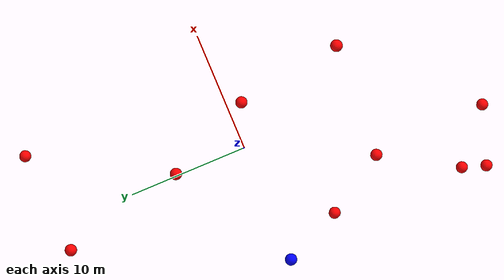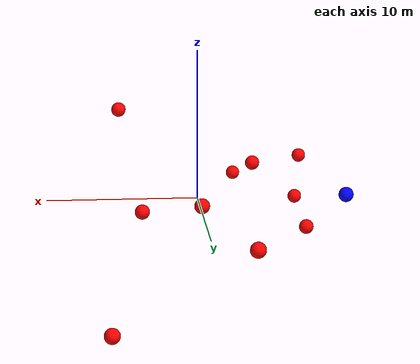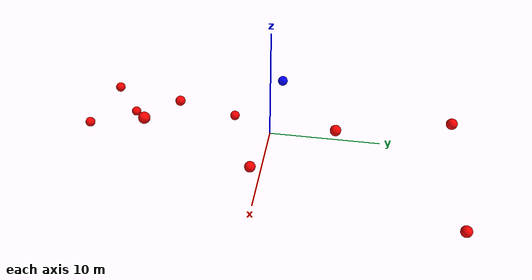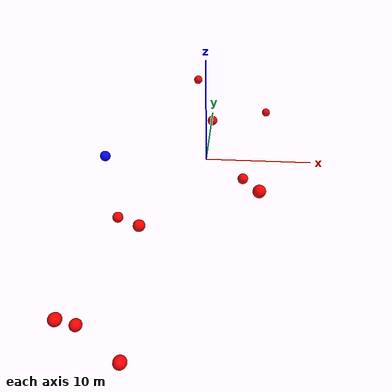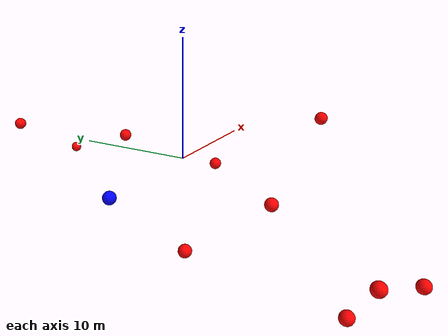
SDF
<?xml version="1.0" ?>
<sdf version="1.8">
    <world name="3d_world">
        <physics name="1ms" type="ode">
            <max_step_size>0.001</max_step_size>
            <real_time_factor>1.0</real_time_factor>
            <real_time_update_rate>1000.0</real_time_update_rate>
        </physics>
        <gravity>0 0 0</gravity>

        <plugin
            filename="gz-sim-physics-system"
            name="gz::sim::v8::systems::Physics">
        </plugin>
        <plugin
            filename="libignition-gazebo-user-commands-system.so"
            name="ignition::gazebo::systems::UserCommands">
        </plugin>
        <plugin
            filename="gz-sim-scene-broadcaster-system"
            name="gz::sim::systems::SceneBroadcaster">
        </plugin>
        <plugin
            filename="gz-sim-sensors-system"
            name="gz::sim::systems::Sensors">
            <render_engine>ogre2</render_engine>
        </plugin>

        <light type="directional" name="sun">
            <cast_shadows>true</cast_shadows>
            <pose>0 0 10 0 0 0</pose>
            <diffuse>0.8 0.8 0.8 1</diffuse>
            <specular>0.2 0.2 0.2 1</specular>
            <attenuation>
                <range>1000</range>
                <constant>0.9</constant>
                <linear>0.01</linear>
                <quadratic>0.001</quadratic>
            </attenuation>
            <direction>-0.5 0.1 -0.9</direction>
        </light>

        <!-- AGENTE -->
        <model name='agente' canonical_link='chassis'>
            <pose relative_to='world'>-10.0 0 0.0 0 0 0</pose>
            <link name='chassis'>
                <pose relative_to='__model__'>0.0 0 0.0 0 0 0</pose>
                <inertial>
                    <mass>1.14395</mass>
                    <inertia>
                        <ixx>0.095329</ixx>
                        <ixy>0</ixy>
                        <ixz>0</ixz>
                        <iyy>0.381317</iyy>
                        <iyz>0</iyz>
                        <izz>0.476646</izz>
                    </inertia>
                </inertial>
                <visual name='visual'>
                    <geometry>
                        <sphere>
                            <radius>0.5</radius>
                        </sphere>
                    </geometry>
                    <material>
                        <ambient>0.0 0.0 1.0 1</ambient>
                        <diffuse>0.0 0.0 1.0 1</diffuse>
                        <specular>0.0 0.0 1.0 1</specular>
                    </material>
                </visual>
                <collision name='collision'>
                    <geometry>
                        <sphere>
                            <radius>0.5</radius>
                        </sphere>
                    </geometry>
                </collision>
                <enable_gravity>false</enable_gravity>
            </link>

            <link name='lidar_link'>
                <pose relative_to='chassis'>0.0 0 0.1 0 0 0</pose>
                <inertial>
                    <mass>0.1</mass>
                    <inertia>
                        <ixx>0.000166667</ixx>
                        <iyy>0.000166667</iyy>
                        <izz>0.000166667</izz>
                    </inertia>
                </inertial>
                <collision name='collision'>
                    <geometry>
                        <cylinder>
                            <radius>0.05</radius>
                            <length>0.1</length>
                        </cylinder>
                    </geometry>
                </collision>
                <visual name='visual'>
                    <geometry>
                        <cylinder>
                            <radius>0.05</radius>
                            <length>0.1</length>
                        </cylinder>
                    </geometry>
                    <material>
                        <ambient>0.0 1.0 0.0 1</ambient>
                        <diffuse>0.0 1.0 0.0 1</diffuse>
                        <specular>0.0 1.0 0.0 1</specular>
                    </material>
                </visual>
                <sensor name="lidar" type="gpu_lidar">
                    <topic>scan</topic>
                    <update_rate>10</update_rate>
                    <lidar>
                        <scan>
                            <horizontal>
                                <samples>5000</samples>
                                <resolution>1</resolution>
                                <min_angle>-3.14159</min_angle>
                                <max_angle>3.14159</max_angle>
                            </horizontal>
                        </scan>
                        <range>
                            <min>0.1</min>
                            <max>10.0</max>
                            <resolution>0.01</resolution>
                        </range>
                    </lidar>
                    <visualize>true</visualize>
                    <always_on>true</always_on>
                    <update_rate>10</update_rate>
                    <pose_frame>lidar</pose_frame>
                </sensor>
                <enable_gravity>false</enable_gravity>
            </link>

            <joint name="lidar_joint" type="fixed">
                <parent>chassis</parent>
                <child>lidar_link</child>
            </joint>

            <plugin
                filename="ignition-gazebo-joint-state-publisher-system"
                name="ignition::gazebo::systems::JointStatePublisher">
            </plugin>
            <plugin
                filename="ignition-gazebo-odometry-publisher-system"
                name="ignition::gazebo::systems::OdometryPublisher">
                <dimensions>3</dimensions>
            </plugin>
            <plugin
                filename="ignition-gazebo-velocity-control-system"
                name="ignition::gazebo::systems::VelocityControl">
                <initial_linear>0.0 0 0</initial_linear>
                <initial_angular>0 0 0.0</initial_angular>
            </plugin>
            <plugin
                filename="libignition-gazebo-pose-publisher-system.so"
                name="ignition::gazebo::systems::PosePublisher">
                <topic>/agente/pose</topic>
                <frame_id>agente</frame_id>
                <update_rate>30</update_rate>
            </plugin>
        </model>

        <!-- OBSTACLE 1 -->
        <model name='obstacle_1' canonical_link='obstacle'>
            <static>false</static>
            <pose relative_to='world'>-8.04 -4.91 -3.65 0 0 0</pose>
            <link name='obstacle'>
                <pose relative_to='__model__'>0.0 0 0.0 0 0 0</pose>
                <visual name='visual'>
                    <geometry>
                        <sphere>
                            <radius>0.50</radius>
                        </sphere>
                    </geometry>
                    <material>
                        <ambient>1.0 0.0 0.0 1</ambient>
                        <diffuse>1.0 0.0 0.0 1</diffuse>
                        <specular>1.0 0.0 0.0 1</specular>
                    </material>
                </visual>
                <collision name='collision'>
                    <geometry>
                        <sphere>
                            <radius>0.50</radius>
                        </sphere>
                    </geometry>
                </collision>
                <enable_gravity>false</enable_gravity>
            </link>

            <plugin
                filename="ignition-gazebo-velocity-control-system"
                name="ignition::gazebo::systems::VelocityControl">
                <initial_linear>0.95 1.41 1.05</initial_linear>
                <initial_angular>0 0 0</initial_angular>
            </plugin>

            <plugin
                filename="ignition-gazebo-odometry-publisher-system"
                name="ignition::gazebo::systems::OdometryPublisher">
                <dimensions>3</dimensions>
            </plugin>
        </model>

        <!-- OBSTACLE 2 -->
        <model name='obstacle_2' canonical_link='obstacle'>
            <static>false</static>
            <pose relative_to='world'>-9.21 -18.12 -1.98 0 0 0</pose>
            <link name='obstacle'>
                <pose relative_to='__model__'>0.0 0 0.0 0 0 0</pose>
                <visual name='visual'>
                    <geometry>
                        <sphere>
                            <radius>0.50</radius>
                        </sphere>
                    </geometry>
                    <material>
                        <ambient>1.0 0.0 0.0 1</ambient>
                        <diffuse>1.0 0.0 0.0 1</diffuse>
                        <specular>1.0 0.0 0.0 1</specular>
                    </material>
                </visual>
                <collision name='collision'>
                    <geometry>
                        <sphere>
                            <radius>0.50</radius>
                        </sphere>
                    </geometry>
                </collision>
                <enable_gravity>false</enable_gravity>
            </link>

            <plugin
                filename="ignition-gazebo-velocity-control-system"
                name="ignition::gazebo::systems::VelocityControl">
                <initial_linear>0.57 1.91 0.21</initial_linear>
                <initial_angular>0 0 0</initial_angular>
            </plugin>

            <plugin
                filename="ignition-gazebo-odometry-publisher-system"
                name="ignition::gazebo::systems::OdometryPublisher">
                <dimensions>3</dimensions>
            </plugin>
        </model>

        <!-- OBSTACLE 3 -->
        <model name='obstacle_3' canonical_link='obstacle'>
            <static>false</static>
            <pose relative_to='world'>-8.72 -16.44 -4.69 0 0 0</pose>
            <link name='obstacle'>
                <pose relative_to='__model__'>0.0 0 0.0 0 0 0</pose>
                <visual name='visual'>
                    <geometry>
                        <sphere>
                            <radius>0.50</radius>
                        </sphere>
                    </geometry>
                    <material>
                        <ambient>1.0 0.0 0.0 1</ambient>
                        <diffuse>1.0 0.0 0.0 1</diffuse>
                        <specular>1.0 0.0 0.0 1</specular>
                    </material>
                </visual>
                <collision name='collision'>
                    <geometry>
                        <sphere>
                            <radius>0.50</radius>
                        </sphere>
                    </geometry>
                </collision>
                <enable_gravity>false</enable_gravity>
            </link>

            <plugin
                filename="ignition-gazebo-velocity-control-system"
                name="ignition::gazebo::systems::VelocityControl">
                <initial_linear>0.85 1.74 0.50</initial_linear>
                <initial_angular>0 0 0</initial_angular>
            </plugin>

            <plugin
                filename="ignition-gazebo-odometry-publisher-system"
                name="ignition::gazebo::systems::OdometryPublisher">
                <dimensions>3</dimensions>
            </plugin>
        </model>

        <!-- OBSTACLE 4 -->
        <model name='obstacle_4' canonical_link='obstacle'>
            <static>false</static>
            <pose relative_to='world'>-4.77 -9.86 -0.29 0 0 0</pose>
            <link name='obstacle'>
                <pose relative_to='__model__'>0.0 0 0.0 0 0 0</pose>
                <visual name='visual'>
                    <geometry>
                        <sphere>
                            <radius>0.50</radius>
                        </sphere>
                    </geometry>
                    <material>
                        <ambient>1.0 0.0 0.0 1</ambient>
                        <diffuse>1.0 0.0 0.0 1</diffuse>
                        <specular>1.0 0.0 0.0 1</specular>
                    </material>
                </visual>
                <collision name='collision'>
                    <geometry>
                        <sphere>
                            <radius>0.50</radius>
                        </sphere>
                    </geometry>
                </collision>
                <enable_gravity>false</enable_gravity>
            </link>

            <plugin
                filename="ignition-gazebo-velocity-control-system"
                name="ignition::gazebo::systems::VelocityControl">
                <initial_linear>1.09 1.68 0.05</initial_linear>
                <initial_angular>0 0 0</initial_angular>
            </plugin>

            <plugin
                filename="ignition-gazebo-odometry-publisher-system"
                name="ignition::gazebo::systems::OdometryPublisher">
                <dimensions>3</dimensions>
            </plugin>
        </model>

        <!-- OBSTACLE 5 -->
        <model name='obstacle_5' canonical_link='obstacle'>
            <static>false</static>
            <pose relative_to='world'>3.59 -1.25 -1.27 0 0 0</pose>
            <link name='obstacle'>
                <pose relative_to='__model__'>0.0 0 0.0 0 0 0</pose>
                <visual name='visual'>
                    <geometry>
                        <sphere>
                            <radius>0.50</radius>
                        </sphere>
                    </geometry>
                    <material>
                        <ambient>1.0 0.0 0.0 1</ambient>
                        <diffuse>1.0 0.0 0.0 1</diffuse>
                        <specular>1.0 0.0 0.0 1</specular>
                    </material>
                </visual>
                <collision name='collision'>
                    <geometry>
                        <sphere>
                            <radius>0.50</radius>
                        </sphere>
                    </geometry>
                </collision>
                <enable_gravity>false</enable_gravity>
            </link>

            <plugin
                filename="ignition-gazebo-velocity-control-system"
                name="ignition::gazebo::systems::VelocityControl">
                <initial_linear>-1.93 0.36 0.36</initial_linear>
                <initial_angular>0 0 0</initial_angular>
            </plugin>

            <plugin
                filename="ignition-gazebo-odometry-publisher-system"
                name="ignition::gazebo::systems::OdometryPublisher">
                <dimensions>3</dimensions>
            </plugin>
        </model>

        <!-- OBSTACLE 6 -->
        <model name='obstacle_6' canonical_link='obstacle'>
            <static>false</static>
            <pose relative_to='world'>-4.43 -19.99 -3.72 0 0 0</pose>
            <link name='obstacle'>
                <pose relative_to='__model__'>0.0 0 0.0 0 0 0</pose>
                <visual name='visual'>
                    <geometry>
                        <sphere>
                            <radius>0.50</radius>
                        </sphere>
                    </geometry>
                    <material>
                        <ambient>1.0 0.0 0.0 1</ambient>
                        <diffuse>1.0 0.0 0.0 1</diffuse>
                        <specular>1.0 0.0 0.0 1</specular>
                    </material>
                </visual>
                <collision name='collision'>
                    <geometry>
                        <sphere>
                            <radius>0.50</radius>
                        </sphere>
                    </geometry>
                </collision>
                <enable_gravity>false</enable_gravity>
            </link>

            <plugin
                filename="ignition-gazebo-velocity-control-system"
                name="ignition::gazebo::systems::VelocityControl">
                <initial_linear>0.77 1.82 0.34</initial_linear>
                <initial_angular>0 0 0</initial_angular>
            </plugin>

            <plugin
                filename="ignition-gazebo-odometry-publisher-system"
                name="ignition::gazebo::systems::OdometryPublisher">
                <dimensions>3</dimensions>
            </plugin>
        </model>

        <!-- OBSTACLE 7 -->
        <model name='obstacle_7' canonical_link='obstacle'>
            <static>false</static>
            <pose relative_to='world'>6.52 17.36 -3.44 0 0 0</pose>
            <link name='obstacle'>
                <pose relative_to='__model__'>0.0 0 0.0 0 0 0</pose>
                <visual name='visual'>
                    <geometry>
                        <sphere>
                            <radius>0.50</radius>
                        </sphere>
                    </geometry>
                    <material>
                        <ambient>1.0 0.0 0.0 1</ambient>
                        <diffuse>1.0 0.0 0.0 1</diffuse>
                        <specular>1.0 0.0 0.0 1</specular>
                    </material>
                </visual>
                <collision name='collision'>
                    <geometry>
                        <sphere>
                            <radius>0.50</radius>
                        </sphere>
                    </geometry>
                </collision>
                <enable_gravity>false</enable_gravity>
            </link>

            <plugin
                filename="ignition-gazebo-velocity-control-system"
                name="ignition::gazebo::systems::VelocityControl">
                <initial_linear>-0.89 -1.76 0.35</initial_linear>
                <initial_angular>0 0 0</initial_angular>
            </plugin>

            <plugin
                filename="ignition-gazebo-odometry-publisher-system"
                name="ignition::gazebo::systems::OdometryPublisher">
                <dimensions>3</dimensions>
            </plugin>
        </model>

        <!-- OBSTACLE 8 -->
        <model name='obstacle_8' canonical_link='obstacle'>
            <static>false</static>
            <pose relative_to='world'>0.20 5.97 1.13 0 0 0</pose>
            <link name='obstacle'>
                <pose relative_to='__model__'>0.0 0 0.0 0 0 0</pose>
                <visual name='visual'>
                    <geometry>
                        <sphere>
                            <radius>0.50</radius>
                        </sphere>
                    </geometry>
                    <material>
                        <ambient>1.0 0.0 0.0 1</ambient>
                        <diffuse>1.0 0.0 0.0 1</diffuse>
                        <specular>1.0 0.0 0.0 1</specular>
                    </material>
                </visual>
                <collision name='collision'>
                    <geometry>
                        <sphere>
                            <radius>0.50</radius>
                        </sphere>
                    </geometry>
                </collision>
                <enable_gravity>false</enable_gravity>
            </link>

            <plugin
                filename="ignition-gazebo-velocity-control-system"
                name="ignition::gazebo::systems::VelocityControl">
                <initial_linear>0.35 -1.26 -0.24</initial_linear>
                <initial_angular>0 0 0</initial_angular>
            </plugin>

            <plugin
                filename="ignition-gazebo-odometry-publisher-system"
                name="ignition::gazebo::systems::OdometryPublisher">
                <dimensions>3</dimensions>
            </plugin>
        </model>

        <!-- OBSTACLE 9 -->
        <model name='obstacle_9' canonical_link='obstacle'>
            <static>false</static>
            <pose relative_to='world'>4.71 -10.06 3.73 0 0 0</pose>
            <link name='obstacle'>
                <pose relative_to='__model__'>0.0 0 0.0 0 0 0</pose>
                <visual name='visual'>
                    <geometry>
                        <sphere>
                            <radius>0.50</radius>
                        </sphere>
                    </geometry>
                    <material>
                        <ambient>1.0 0.0 0.0 1</ambient>
                        <diffuse>1.0 0.0 0.0 1</diffuse>
                        <specular>1.0 0.0 0.0 1</specular>
                    </material>
                </visual>
                <collision name='collision'>
                    <geometry>
                        <sphere>
                            <radius>0.50</radius>
                        </sphere>
                    </geometry>
                </collision>
                <enable_gravity>false</enable_gravity>
            </link>

            <plugin
                filename="ignition-gazebo-velocity-control-system"
                name="ignition::gazebo::systems::VelocityControl">
                <initial_linear>-1.30 1.43 -0.53</initial_linear>
                <initial_angular>0 0 0</initial_angular>
            </plugin>

            <plugin
                filename="ignition-gazebo-odometry-publisher-system"
                name="ignition::gazebo::systems::OdometryPublisher">
                <dimensions>3</dimensions>
            </plugin>
        </model>

        <!-- OBSTACLE 10 -->
        <model name='obstacle_10' canonical_link='obstacle'>
            <static>false</static>
            <pose relative_to='world'>-2.22 16.31 1.33 0 0 0</pose>
            <link name='obstacle'>
                <pose relative_to='__model__'>0.0 0 0.0 0 0 0</pose>
                <visual name='visual'>
                    <geometry>
                        <sphere>
                            <radius>0.50</radius>
                        </sphere>
                    </geometry>
                    <material>
                        <ambient>1.0 0.0 0.0 1</ambient>
                        <diffuse>1.0 0.0 0.0 1</diffuse>
                        <specular>1.0 0.0 0.0 1</specular>
                    </material>
                </visual>
                <collision name='collision'>
                    <geometry>
                        <sphere>
                            <radius>0.50</radius>
                        </sphere>
                    </geometry>
                </collision>
                <enable_gravity>false</enable_gravity>
            </link>

            <plugin
                filename="ignition-gazebo-velocity-control-system"
                name="ignition::gazebo::systems::VelocityControl">
                <initial_linear>0.98 -1.74 -0.14</initial_linear>
                <initial_angular>0 0 0</initial_angular>
            </plugin>

            <plugin
                filename="ignition-gazebo-odometry-publisher-system"
                name="ignition::gazebo::systems::OdometryPublisher">
                <dimensions>3</dimensions>
            </plugin>
        </model>

    </world>
</sdf>
